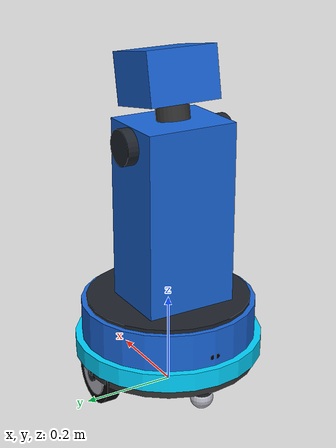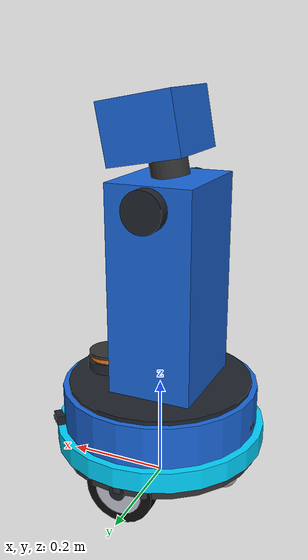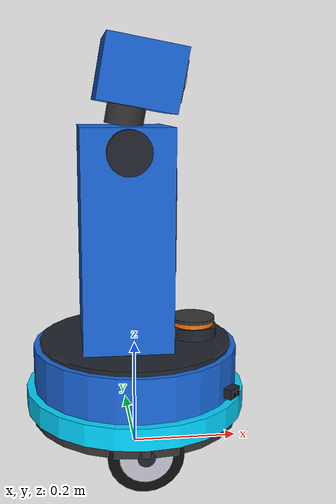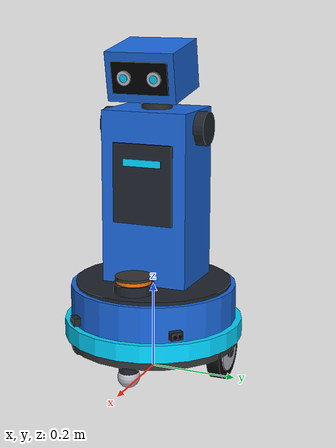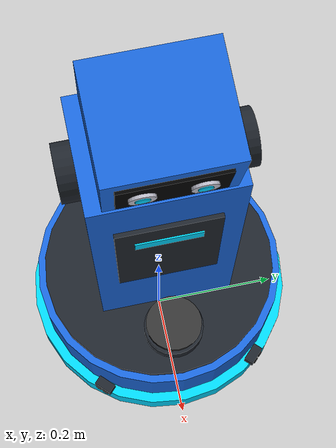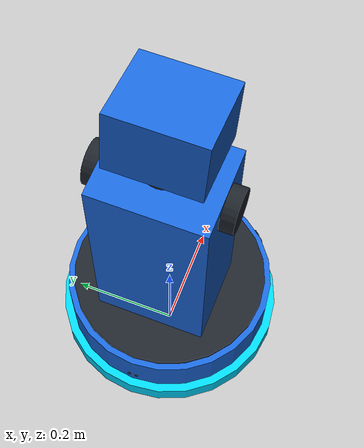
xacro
<?xml version="1.0"?>
<!-- GRaCEmo ViRa — Clean Rebuild                                                   -->
<!-- Piece 3: Humanoid Torso, Neck & Stereo RGB-D Perception Head ("The Eyes")     -->
<robot name="gracemo_vira_piece_3" xmlns:xacro="http://www.ros.org/wiki/xacro">

  <!-- Include Piece 2: Mobile Base & Sensor Deck -->
  <xacro:include filename="piece_2_sensors.urdf.xacro" />

  <!-- Dimensions & Proportions                                                 -->
  <xacro:property name="torso_width"   value="0.200" />  <!-- 200mm chest width -->
  <xacro:property name="torso_depth"   value="0.160" />  <!-- 160mm chest depth -->
  <xacro:property name="torso_height"  value="0.400" />  <!-- 400mm torso height -->

  <!-- Humanoid Torso (Compute Spine & Electronics Housing)                     -->
  <link name="torso_link">
    <!-- Main Upper Body Shell (Chassis Blue) -->
    <visual>
      <origin xyz="0 0 ${torso_height / 2.0}" rpy="0 0 0" />
      <geometry>
        <box size="${torso_depth} ${torso_width} ${torso_height}" />
      </geometry>
      <material name="chassis_blue" />
    </visual>

    <!-- Chest Protective Plate (Matte Dark Titanium) -->
    <visual>
      <origin xyz="${torso_depth / 2.0 + 0.003} 0 ${torso_height * 0.60}" rpy="0 0 0" />
      <geometry>
        <box size="0.006 0.140 0.180" />
      </geometry>
      <material name="matte_dark_titanium" />
    </visual>

    <!-- Status Glow Bar / Cybernetic Heartbeat (Cyan Glow) -->
    <visual>
      <origin xyz="${torso_depth / 2.0 + 0.006} 0 ${torso_height * 0.72}" rpy="0 0 0" />
      <geometry>
        <box size="0.004 0.090 0.016" />
      </geometry>
      <material name="cyan_glow" />
    </visual>

    <!-- Right Shoulder Socket Collar (where 7-DOF arm will bolt on) -->
    <visual>
      <origin xyz="0.0 -0.112 ${torso_height - 0.040}" rpy="${pi/2} 0 0" />
      <geometry>
        <cylinder radius="0.038" length="0.024" />
      </geometry>
      <material name="matte_dark_titanium" />
    </visual>

    <!-- Left Arm Mount Collar -->
    <visual>
      <origin xyz="0.0 0.112 ${torso_height - 0.040}" rpy="${pi/2} 0 0" />
      <geometry>
        <cylinder radius="0.038" length="0.024" />
      </geometry>
      <material name="matte_dark_titanium" />
    </visual>

    <!-- Collision box -->
    <collision>
      <origin xyz="0 0 ${torso_height / 2.0}" rpy="0 0 0" />
      <geometry>
        <box size="${torso_depth} ${torso_width} ${torso_height}" />
      </geometry>
    </collision>

    <inertial>
      <origin xyz="0 0 ${torso_height / 2.0}" rpy="0 0 0" />
      <mass value="2.50" />
      <inertia ixx="0.041" ixy="0.0" ixz="0.0" iyy="0.038" iyz="0.0" izz="0.015" />
    </inertial>
  </link>

  <joint name="torso_joint" type="fixed">
    <parent link="base_link" />
    <child link="torso_link" />
    <!-- Mounted on chassis top deck: slightly aft (X = -20mm) to balance front LiDAR -->
    <origin xyz="-0.020 0.0 ${chassis_height}" rpy="0 0 0" />
  </joint>

  <gazebo reference="torso_link">
    <material>Gazebo/Blue</material>
  </gazebo>

  <!-- Sensor Head & Face Visor ("The Robot's Eyes")                            -->
  <link name="head_link">
    <!-- Neck Articulation Column (Dark Grey) -->
    <visual>
      <origin xyz="0 0 0.020" rpy="0 0 0" />
      <geometry>
        <cylinder radius="0.035" length="0.040" />
      </geometry>
      <material name="dark_grey" />
    </visual>

    <!-- Head Helmet Shell (Chassis Blue) -->
    <visual>
      <origin xyz="0.010 0 0.090" rpy="0 0 0" />
      <geometry>
        <box size="0.140 0.160 0.110" />
      </geometry>
      <material name="chassis_blue" />
    </visual>

    <!-- Dark Face Visor (Camera Lens Black) -->
    <visual>
      <origin xyz="0.081 0 0.090" rpy="0 0 0" />
      <geometry>
        <box size="0.006 0.130 0.070" />
      </geometry>
      <material name="camera_lens_black" />
    </visual>

    <!-- Left Eye Optical Aperture (Metallic Silver Rim) -->
    <visual>
      <origin xyz="0.085 0.035 0.090" rpy="0 ${pi/2} 0" />
      <geometry>
        <cylinder radius="0.016" length="0.006" />
      </geometry>
      <material name="metallic_silver" />
    </visual>

    <!-- Right Eye Optical Aperture (Metallic Silver Rim) -->
    <visual>
      <origin xyz="0.085 -0.035 0.090" rpy="0 ${pi/2} 0" />
      <geometry>
        <cylinder radius="0.016" length="0.006" />
      </geometry>
      <material name="metallic_silver" />
    </visual>

    <!-- Glowing Cybernetic Eye Pupils (Cyan Glow) -->
    <visual>
      <origin xyz="0.088 0.035 0.090" rpy="0 ${pi/2} 0" />
      <geometry>
        <cylinder radius="0.009" length="0.002" />
      </geometry>
      <material name="cyan_glow" />
    </visual>
    <visual>
      <origin xyz="0.088 -0.035 0.090" rpy="0 ${pi/2} 0" />
      <geometry>
        <cylinder radius="0.009" length="0.002" />
      </geometry>
      <material name="cyan_glow" />
    </visual>

    <collision>
      <origin xyz="0.010 0 0.080" rpy="0 0 0" />
      <geometry>
        <box size="0.140 0.160 0.120" />
      </geometry>
    </collision>

    <inertial>
      <origin xyz="0.010 0 0.080" rpy="0 0 0" />
      <mass value="0.60" />
      <inertia ixx="0.0015" ixy="0.0" ixz="0.0" iyy="0.0015" iyz="0.0" izz="0.0015" />
    </inertial>
  </link>

  <joint name="head_joint" type="fixed">
    <parent link="torso_link" />
    <child link="head_link" />
    <!-- Mounted on top of torso neck ring: Z = torso_height (0.40m) -->
    <!-- Pitched slightly downward (0.18 rad ~ 10 deg) to look at floor obstacles & tables -->
    <origin xyz="0.0 0.0 ${torso_height}" rpy="0 0.18 0" />
  </joint>

  <!-- Stereo RGB-D Perception Sensor ("The Eyes")                              -->
  <link name="camera_link">
    <inertial>
      <mass value="0.05" />
      <inertia ixx="0.00001" ixy="0.0" ixz="0.0" iyy="0.00001" iyz="0.0" izz="0.00001" />
    </inertial>
  </link>

  <joint name="camera_joint" type="fixed">
    <parent link="head_link" />
    <child link="camera_link" />
    <origin xyz="0.088 0 0.090" rpy="0 0 0" />
  </joint>

  <!-- Optical Link for ROS Camera Frame Convention (Z-forward, X-right, Y-down) -->
  <link name="camera_optical_link" />

  <joint name="camera_optical_joint" type="fixed">
    <parent link="camera_link" />
    <child link="camera_optical_link" />
    <origin xyz="0 0 0" rpy="${-pi/2} 0 ${-pi/2}" />
  </joint>

  <!-- Gazebo RGB Visual Camera Sensor -->
  <gazebo reference="camera_link">
    <sensor name="camera" type="camera">
      <pose>0 0 0 0 0 0</pose>
      <topic>/camera/image_raw</topic>
      <update_rate>30.0</update_rate>
      <camera>
        <horizontal_fov>1.30</horizontal_fov>
        <image>
          <width>1280</width>
          <height>720</height>
          <format>R8G8B8</format>
        </image>
        <clip>
          <near>0.08</near>
          <far>15.0</far>
        </clip>
      </camera>
      <always_on>1</always_on>
      <visualize>true</visualize>
    </sensor>
  </gazebo>

  <!-- Gazebo 3D Depth Perception Sensor (Captures Obstacle 3D Contours & Shapes) -->
  <gazebo reference="camera_link">
    <sensor name="depth_camera" type="depth_camera">
      <pose>0 0 0 0 0 0</pose>
      <topic>/camera/depth_image</topic>
      <update_rate>20.0</update_rate>
      <camera>
        <horizontal_fov>1.30</horizontal_fov>
        <image>
          <width>640</width>
          <height>360</height>
        </image>
        <clip>
          <near>0.15</near>
          <far>10.0</far>
        </clip>
      </camera>
      <always_on>1</always_on>
    </sensor>
  </gazebo>

</robot>

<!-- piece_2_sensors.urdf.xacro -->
<!-- GRaCEmo ViRa — Clean Rebuild                                                   -->
<!-- Piece 2: Sensor Deck & Elevated Optical LiDAR Pedestal                         -->
<robot name="gracemo_vira_piece_2" xmlns:xacro="http://www.ros.org/wiki/xacro">

  <!-- Include Piece 1: Mobile Base Subsystem -->
  <xacro:include filename="piece_1_base.urdf.xacro" />

  <!-- 2D Planar LiDAR Sensor (Elevated Optical Lens: Z_ground = 0.240m)        -->
  <link name="lidar_link">
    <!-- Pedestal Mounting Base (Dark Titanium) -->
    <visual>
      <origin xyz="0 0 0.015" rpy="0 0 0" />
      <geometry>
        <cylinder radius="0.045" length="0.030" />
      </geometry>
      <material name="matte_dark_titanium" />
    </visual>
    <!-- Rotating Optical Turret Drum (LiDAR Orange Accent) -->
    <visual>
      <origin xyz="0 0 0.032" rpy="0 0 0" />
      <geometry>
        <cylinder radius="0.040" length="0.015" />
      </geometry>
      <material name="lidar_orange" />
    </visual>
    <!-- Top Aerodynamic Cap (Dark Grey) -->
    <visual>
      <origin xyz="0 0 0.042" rpy="0 0 0" />
      <geometry>
        <cylinder radius="0.042" length="0.006" />
      </geometry>
      <material name="dark_grey" />
    </visual>

    <inertial>
      <origin xyz="0 0 0.025" rpy="0 0 0" />
      <mass value="0.18" />
      <inertia ixx="0.0001" ixy="0.0" ixz="0.0" iyy="0.0001" iyz="0.0" izz="0.0001" />
    </inertial>
  </link>

  <joint name="lidar_joint" type="fixed">
    <parent link="base_link" />
    <child link="lidar_link" />
    <!-- Mounted on front of chassis deck: X = +110mm, Z = chassis_height (140mm) -->
    <origin xyz="0.110 0.0 ${chassis_height}" rpy="0 0 0" />
  </joint>

  <!-- Gazebo GPU LiDAR Sensor: Ray origin at Z=0.035m (Z_ground = 0.240m) -->
  <gazebo reference="lidar_link">
    <sensor name="lidar" type="gpu_lidar">
      <pose>0 0 0.035 0 0 0</pose>
      <topic>/scan</topic>
      <update_rate>20.0</update_rate>
      <ray>
        <scan>
          <horizontal>
            <samples>360</samples>
            <resolution>1</resolution>
            <min_angle>-3.14159</min_angle>
            <max_angle>3.14159</max_angle>
          </horizontal>
        </scan>
        <range>
          <min>0.08</min>
          <max>12.0</max>
          <resolution>0.01</resolution>
        </range>
      </ray>
      <always_on>1</always_on>
      <visualize>true</visualize>
    </sensor>
    <material>Gazebo/Orange</material>
  </gazebo>

  <!-- Corner Time-of-Flight (ToF) Ultrasonic Proximity Sensor Bezels           -->
  <xacro:macro name="tof_sensor_mount" params="prefix x y z yaw">
    <link name="${prefix}_link">
      <!-- Sensor Bezel Housing (Matte Dark Titanium) -->
      <visual>
        <origin xyz="0 0 0" rpy="0 0 0" />
        <geometry>
          <box size="0.015 0.028 0.018" />
        </geometry>
        <material name="matte_dark_titanium" />
      </visual>
      <!-- Dual Emitter/Receiver Lenses (Camera Lens Black) -->
      <visual>
        <origin xyz="0.008 0.006 0" rpy="0 ${pi/2} 0" />
        <geometry>
          <cylinder radius="0.005" length="0.003" />
        </geometry>
        <material name="camera_lens_black" />
      </visual>
      <visual>
        <origin xyz="0.008 -0.006 0" rpy="0 ${pi/2} 0" />
        <geometry>
          <cylinder radius="0.005" length="0.003" />
        </geometry>
        <material name="camera_lens_black" />
      </visual>
      <inertial>
        <mass value="0.01" />
        <inertia ixx="0.000001" ixy="0" ixz="0" iyy="0.000001" iyz="0" izz="0.000001" />
      </inertial>
    </link>

    <joint name="${prefix}_joint" type="fixed">
      <parent link="base_link" />
      <child link="${prefix}_link" />
      <origin xyz="${x} ${y} ${z}" rpy="0 0 ${yaw}" />
    </joint>

    <gazebo reference="${prefix}_link">
      <sensor name="${prefix}" type="gpu_lidar">
        <pose>0 0 0 0 0 0</pose>
        <topic>/tof/${prefix}</topic>
        <update_rate>25.0</update_rate>
        <ray>
          <scan>
            <horizontal>
              <samples>5</samples>
              <resolution>1</resolution>
              <min_angle>-0.20</min_angle>
              <max_angle>0.20</max_angle>
            </horizontal>
          </scan>
          <range>
            <min>0.02</min>
            <max>2.0</max>
            <resolution>0.005</resolution>
          </range>
        </ray>
        <always_on>1</always_on>
      </sensor>
      <material>Gazebo/DarkGrey</material>
    </gazebo>
  </xacro:macro>

  <!-- Front-Left 45° Corner ToF -->
  <xacro:tof_sensor_mount prefix="tof_front_left"  x="0.160" y="0.120"  z="0.080" yaw="${pi/4}" />
  <!-- Front-Right -45° Corner ToF -->
  <xacro:tof_sensor_mount prefix="tof_front_right" x="0.160" y="-0.120" z="0.080" yaw="${-pi/4}" />
  <!-- Rear 180° Backup ToF -->
  <xacro:tof_sensor_mount prefix="tof_rear"        x="-0.180" y="0.0"   z="0.080" yaw="${pi}" />

  <!-- Central IMU Sensor (Inertial Navigation Core)                            -->
  <link name="imu_link">
    <inertial>
      <mass value="0.01" />
      <inertia ixx="0.000001" ixy="0" ixz="0" iyy="0.000001" iyz="0" izz="0.000001" />
    </inertial>
  </link>

  <joint name="imu_joint" type="fixed">
    <parent link="base_link" />
    <child link="imu_link" />
    <origin xyz="0 0 0.080" rpy="0 0 0" />
  </joint>

  <gazebo reference="imu_link">
    <sensor name="imu" type="imu">
      <topic>/imu/data</topic>
      <update_rate>50.0</update_rate>
      <always_on>1</always_on>
    </sensor>
  </gazebo>

</robot>

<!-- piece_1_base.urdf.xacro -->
<!-- GRaCEmo ViRa — Clean Rebuild                                                   -->
<!-- Piece 1: Mobile Base Subsystem                                                 -->
<robot name="gracemo_vira_base" xmlns:xacro="http://www.ros.org/wiki/xacro">

  <!-- Include Shared Materials -->
  <xacro:include filename="materials.xacro" />

  <!-- Mathematical Parameters & Dimensions                                     -->
  <xacro:property name="wheel_radius"     value="0.065" />  <!-- 130mm diameter -->
  <xacro:property name="wheel_width"      value="0.030" />  <!-- 30mm thickness -->
  <xacro:property name="wheelbase"        value="0.340" />  <!-- 340mm track width -->
  <xacro:property name="chassis_radius"   value="0.190" />  <!-- 380mm diameter -->
  <xacro:property name="chassis_height"   value="0.140" />  <!-- 140mm height -->
  <xacro:property name="bumper_radius"    value="0.205" />  <!-- 410mm diameter ring -->
  <xacro:property name="bumper_height"    value="0.040" />  <!-- 40mm ring thickness -->
  <xacro:property name="caster_radius"    value="0.025" />  <!-- 50mm ball diameter -->
  <xacro:property name="caster_x_offset"  value="0.140" />  <!-- 140mm fore/aft from axle -->

  <!-- Base Footprint (Ground Projection: Z = 0.000m)                           -->
  <link name="base_footprint" />

  <joint name="base_footprint_joint" type="fixed">
    <parent link="base_footprint" />
    <child link="base_link" />
    <origin xyz="0 0 ${wheel_radius}" rpy="0 0 0" />
  </joint>

  <!-- Base Link: Cylindrical Mobile Chassis & Balanced Core                    -->
  <link name="base_link">
    <!-- Visual 1: Main Cylindrical Outer Hull (Chassis Blue) -->
    <visual>
      <origin xyz="0 0 ${chassis_height / 2.0}" rpy="0 0 0" />
      <geometry>
        <cylinder radius="${chassis_radius}" length="${chassis_height}" />
      </geometry>
      <material name="chassis_blue" />
    </visual>

    <!-- Visual 2: Lower Protective Ground Skirt (Dark Grey) -->
    <visual>
      <origin xyz="0 0 ${chassis_height * 0.18}" rpy="0 0 0" />
      <geometry>
        <cylinder radius="${chassis_radius + 0.004}" length="${chassis_height * 0.36}" />
      </geometry>
      <material name="dark_grey" />
    </visual>

    <!-- Visual 3: Top Deck Plate (Matte Dark Titanium flush deck) -->
    <visual>
      <origin xyz="0 0 ${chassis_height + 0.004}" rpy="0 0 0" />
      <geometry>
        <cylinder radius="${chassis_radius * 0.94}" length="0.008" />
      </geometry>
      <material name="matte_dark_titanium" />
    </visual>

    <!-- Physical Collision: Tight non-overlapping bounding cylinder -->
    <collision name="base_chassis_collision">
      <origin xyz="0 0 ${chassis_height / 2.0}" rpy="0 0 0" />
      <geometry>
        <cylinder radius="${chassis_radius}" length="${chassis_height}" />
      </geometry>
    </collision>

    <!-- Balanced Inertia: Heavy 8.0kg low CoM placed strictly on axle centerline -->
    <inertial>
      <origin xyz="0.0 0.0 0.020" rpy="0 0 0" />
      <mass value="8.0" />
      <inertia ixx="0.085" ixy="0.0" ixz="0.0" iyy="0.085" iyz="0.0" izz="0.144" />
    </inertial>
  </link>

  <gazebo reference="base_link">
    <material>Gazebo/Blue</material>
  </gazebo>

  <!-- 360° Tactile Bumper Ring (Physical Collision Sensor & Accent Halo)       -->
  <link name="bumper_link">
    <visual>
      <origin xyz="0 0 0" rpy="0 0 0" />
      <geometry>
        <cylinder radius="${bumper_radius}" length="${bumper_height}" />
      </geometry>
      <material name="cyan_glow" />
    </visual>
    <collision name="bumper_collision">
      <origin xyz="0 0 0" rpy="0 0 0" />
      <geometry>
        <cylinder radius="${bumper_radius}" length="${bumper_height}" />
      </geometry>
    </collision>
    <inertial>
      <mass value="0.25" />
      <inertia ixx="0.001" ixy="0.0" ixz="0.0" iyy="0.001" iyz="0.0" izz="0.002" />
    </inertial>
  </link>

  <joint name="bumper_joint" type="fixed">
    <parent link="base_link" />
    <child link="bumper_link" />
    <origin xyz="0 0 0.040" rpy="0 0 0" />
  </joint>

  <gazebo reference="bumper_link">
    <material>Gazebo/TurquoiseGlow</material>
  </gazebo>

  <!-- Drive Wheels (Left & Right with Rubber Tread & Metallic Rim)             -->
  <xacro:macro name="drive_wheel" params="prefix y_offset flip_sign">
    <link name="${prefix}_wheel_link">
      <!-- Rubber Tire Tread -->
      <visual>
        <origin xyz="0 0 0" rpy="${pi/2} 0 0" />
        <geometry>
          <cylinder radius="${wheel_radius}" length="${wheel_width}" />
        </geometry>
        <material name="rubber_black" />
      </visual>
      <!-- Metallic Silver Wheel Hub Rim -->
      <visual>
        <origin xyz="0 ${flip_sign * 0.002} 0" rpy="${pi/2} 0 0" />
        <geometry>
          <cylinder radius="${wheel_radius * 0.70}" length="${wheel_width * 1.05}" />
        </geometry>
        <material name="metallic_silver" />
      </visual>
      <!-- Central Axle Nut -->
      <visual>
        <origin xyz="0 ${flip_sign * (wheel_width / 2.0 + 0.004)} 0" rpy="${pi/2} 0 0" />
        <geometry>
          <cylinder radius="0.015" length="0.008" />
        </geometry>
        <material name="matte_dark_titanium" />
      </visual>
      <!-- Collision Cylinder -->
      <collision>
        <origin xyz="0 0 0" rpy="${pi/2} 0 0" />
        <geometry>
          <cylinder radius="${wheel_radius}" length="${wheel_width}" />
        </geometry>
      </collision>
      <!-- Inertia: solid cylinder m=0.6kg, r=0.065m, h=0.03m -->
      <inertial>
        <mass value="0.60" />
        <inertia ixx="0.00067" ixy="0.0" ixz="0.0" iyy="0.00067" iyz="0.0" izz="0.00126" />
      </inertial>
    </link>

    <joint name="${prefix}_wheel_joint" type="continuous">
      <parent link="base_link" />
      <child link="${prefix}_wheel_link" />
      <origin xyz="0 ${y_offset} 0" rpy="0 0 0" />
      <axis xyz="0 1 0" />
      <dynamics damping="0.1" friction="0.05" />
    </joint>

    <gazebo reference="${prefix}_wheel_link">
      <mu1>1.5</mu1>
      <mu2>1.5</mu2>
      <kp>1000000.0</kp>
      <kd>10.0</kd>
      <minDepth>0.001</minDepth>
      <material>Gazebo/DarkGrey</material>
    </gazebo>
  </xacro:macro>

  <xacro:drive_wheel prefix="left"  y_offset="${wheelbase / 2.0}"  flip_sign="1" />
  <xacro:drive_wheel prefix="right" y_offset="${-wheelbase / 2.0}" flip_sign="-1" />

  <!-- Support Casters (Front & Rear Ground-Tangent Frictionless Gliders)        -->
  <xacro:macro name="support_caster" params="prefix x_offset">
    <link name="${prefix}_caster_link">
      <!-- Rolling Metallic Ball -->
      <visual>
        <origin xyz="0 0 0" rpy="0 0 0" />
        <geometry>
          <sphere radius="${caster_radius}" />
        </geometry>
        <material name="metallic_silver" />
      </visual>
      <!-- Structural Stanchion / Caster Bracket bolted into chassis underside -->
      <visual>
        <origin xyz="0 0 0.022" rpy="0 0 0" />
        <geometry>
          <cylinder radius="0.022" length="0.035" />
        </geometry>
        <material name="matte_dark_titanium" />
      </visual>
      <!-- Floor Tangent Collision: Sphere touches at exactly Z = 0.000m -->
      <collision>
        <origin xyz="0 0 0" rpy="0 0 0" />
        <geometry>
          <sphere radius="${caster_radius}" />
        </geometry>
      </collision>
      <inertial>
        <mass value="0.10" />
        <inertia ixx="0.000025" ixy="0.0" ixz="0.0" iyy="0.000025" iyz="0.0" izz="0.000025" />
      </inertial>
    </link>

    <joint name="${prefix}_caster_joint" type="fixed">
      <parent link="base_link" />
      <child link="${prefix}_caster_link" />
      <!-- Z offset: wheel_radius (0.065) - caster_radius (0.025) = 0.040 downward -->
      <origin xyz="${x_offset} 0 ${-wheel_radius + caster_radius}" rpy="0 0 0" />
    </joint>

    <gazebo reference="${prefix}_caster_link">
      <mu1>0.0</mu1>
      <mu2>0.0</mu2>
      <kp>1000000.0</kp>
      <kd>10.0</kd>
      <minDepth>0.0001</minDepth>
      <material>Gazebo/Grey</material>
    </gazebo>
  </xacro:macro>

  <xacro:support_caster prefix="front" x_offset="${caster_x_offset}" />
  <xacro:support_caster prefix="rear"  x_offset="${-caster_x_offset}" />

  <!-- Differential Drive Actuator Plugin (Gazebo Harmonic)                     -->
  <gazebo>
    <plugin filename="gz-sim-diff-drive-system" name="gz::sim::systems::DiffDrive">
      <left_joint>left_wheel_joint</left_joint>
      <right_joint>right_wheel_joint</right_joint>
      <wheel_separation>${wheelbase}</wheel_separation>
      <wheel_radius>${wheel_radius}</wheel_radius>
      <max_wheel_torque>150.0</max_wheel_torque>
      <max_linear_acceleration>5.0</max_linear_acceleration>
      <max_angular_acceleration>8.0</max_angular_acceleration>
      <min_linear_velocity>-1.5</min_linear_velocity>
      <max_linear_velocity>1.5</max_linear_velocity>
      <min_angular_velocity>-3.0</min_angular_velocity>
      <max_angular_velocity>3.0</max_angular_velocity>
      <topic>/cmd_vel</topic>
      <odom_topic>/odom</odom_topic>
      <tf_topic>/tf</tf_topic>
      <frame_id>odom</frame_id>
      <child_frame_id>base_footprint</child_frame_id>
      <odom_publish_frequency>50</odom_publish_frequency>
    </plugin>
  </gazebo>

</robot>

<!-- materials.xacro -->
<robot xmlns:xacro="http://www.ros.org/wiki/xacro">

  <material name="chassis_blue">
    <color rgba="0.10 0.40 0.85 1.0"/>
  </material>

  <material name="dark_grey">
    <color rgba="0.20 0.20 0.20 1.0"/>
  </material>

  <material name="rubber_black">
    <color rgba="0.05 0.05 0.05 1.0"/>
  </material>

  <material name="metallic_silver">
    <color rgba="0.75 0.75 0.80 1.0"/>
  </material>

  <material name="camera_lens_black">
    <color rgba="0.0 0.0 0.0 1.0"/>
  </material>

  <material name="lidar_orange">
    <color rgba="0.95 0.45 0.05 1.0"/>
  </material>

  <material name="cyan_glow">
    <color rgba="0.0 0.83 1.0 1.0"/>
  </material>

  <material name="matte_dark_titanium">
    <color rgba="0.12 0.14 0.17 1.0"/>
  </material>

  <material name="safety_orange">
    <color rgba="1.0 0.4745 0.0 1.0"/>
  </material>

  <material name="accent_orange">
    <color rgba="1.0 0.4745 0.0 1.0"/>
  </material>

  <material name="pure_white">
    <color rgba="0.96 0.96 0.96 1.0"/>
  </material>

</robot>
